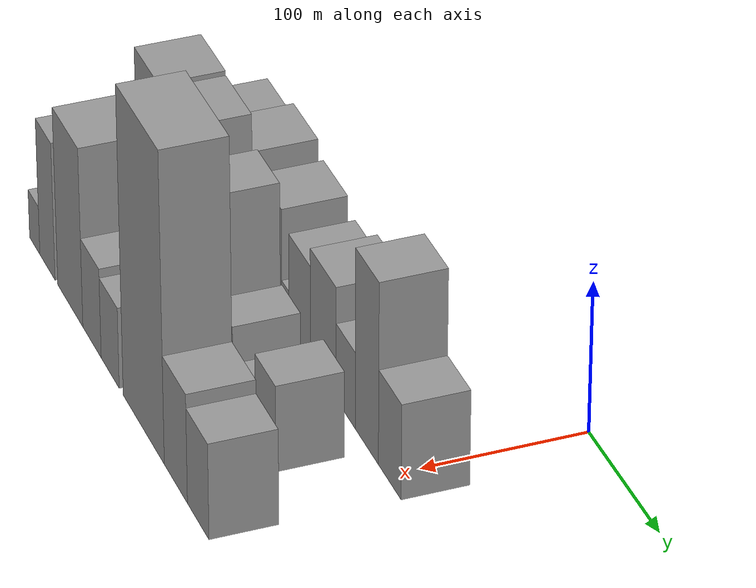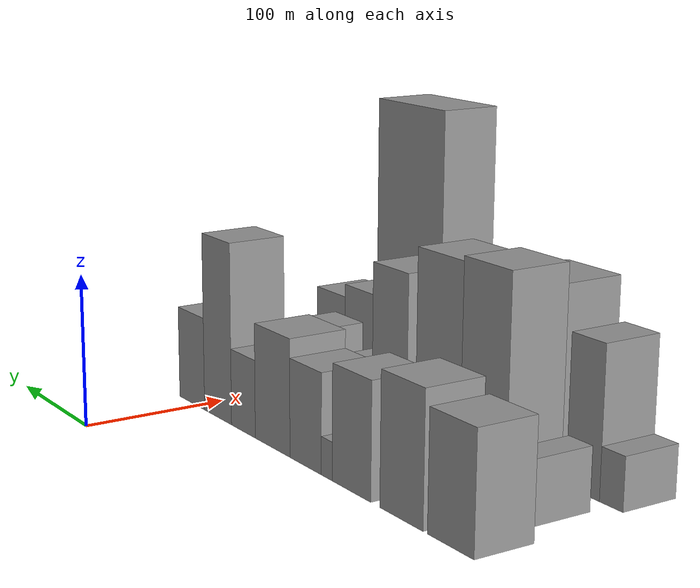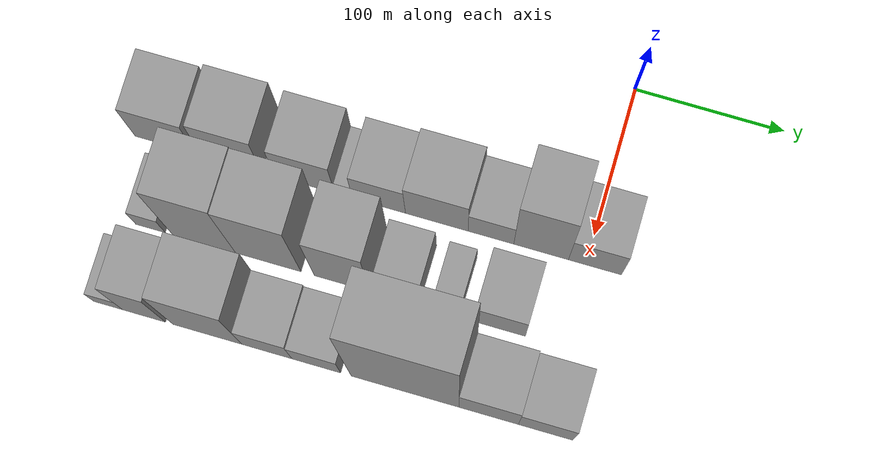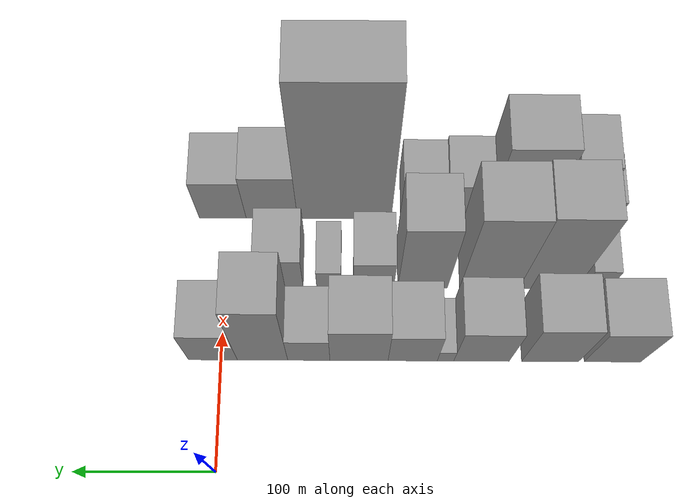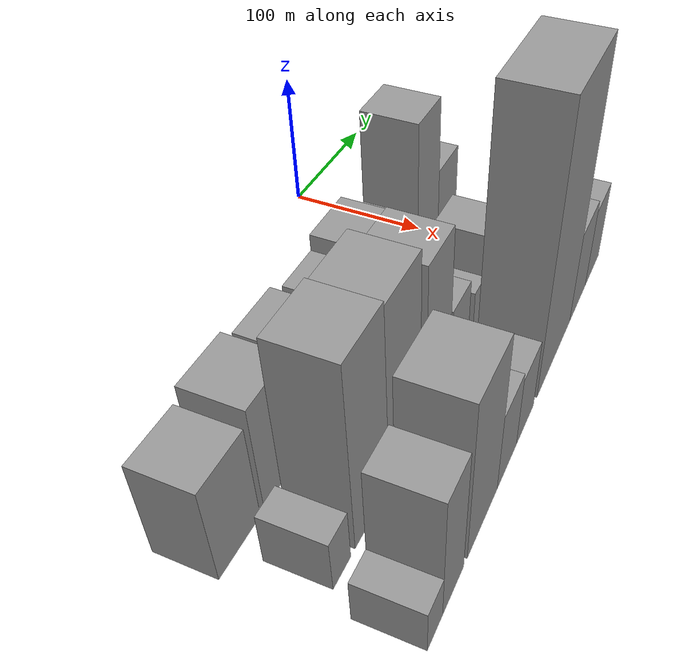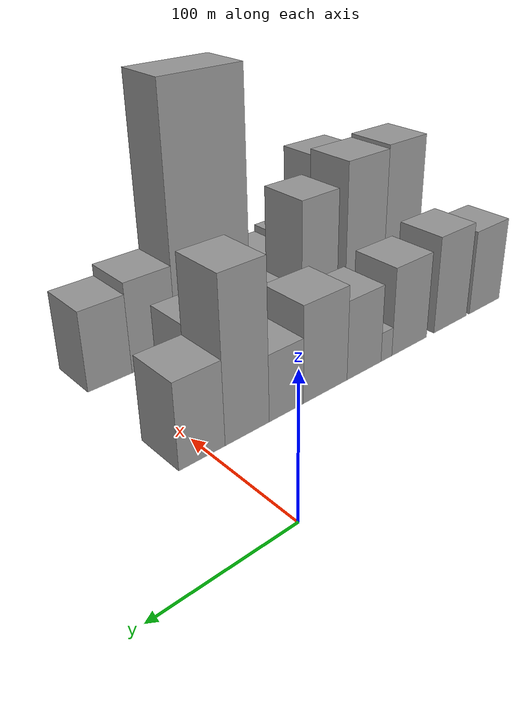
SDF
<sdf version="1.6">
 <world name="default">
  <model name="building_9">
   <static>1</static>
   <pose>100.0000 -281.9549 0 0.000000 0.000000 0.000000</pose>
   <link name="link">
    <pose>0 0 36.00 0 0 0</pose>
    <collision name="collision"><geometry><box><size>40.0000 40.7148 72.0000</size></box></geometry></collision>
    <visual name="visual">
     <cast_shadows>0</cast_shadows>
     <geometry><box><size>40.0000 40.7148 72.0000</size></box></geometry>
     <material>
      <script>
       <uri>model://grey_wall/materials/scripts</uri>
       <uri>model://grey_wall/materials/textures</uri>
       <name>vrc/grey_wall</name>
      </script>
     </material>
    </visual>
   </link>
  </model>
  <model name="building_10">
   <static>1</static>
   <pose>100.0000 -237.0497 0 0.000000 0.000000 0.000000</pose>
   <link name="link">
    <pose>0 0 40.50 0 0 0</pose>
    <collision name="collision"><geometry><box><size>40.0000 41.0955 81.0000</size></box></geometry></collision>
    <visual name="visual">
     <cast_shadows>0</cast_shadows>
     <geometry><box><size>40.0000 41.0955 81.0000</size></box></geometry>
     <material>
      <script>
       <uri>model://grey_wall/materials/scripts</uri>
       <uri>model://grey_wall/materials/textures</uri>
       <name>vrc/grey_wall</name>
      </script>
     </material>
    </visual>
   </link>
  </model>
  <model name="building_11">
   <static>1</static>
   <pose>100.0000 -187.5031 0 0.000000 0.000000 0.000000</pose>
   <link name="link">
    <pose>0 0 36.00 0 0 0</pose>
    <collision name="collision"><geometry><box><size>40.0000 39.9978 72.0000</size></box></geometry></collision>
    <visual name="visual">
     <cast_shadows>0</cast_shadows>
     <geometry><box><size>40.0000 39.9978 72.0000</size></box></geometry>
     <material>
      <script>
       <uri>model://grey_wall/materials/scripts</uri>
       <uri>model://grey_wall/materials/textures</uri>
       <name>vrc/grey_wall</name>
      </script>
     </material>
    </visual>
   </link>
  </model>
  <model name="building_12">
   <static>1</static>
   <pose>100.0000 -161.5487 0 0.000000 0.000000 0.000000</pose>
   <link name="link">
    <pose>0 0 12.00 0 0 0</pose>
    <collision name="collision"><geometry><box><size>40.0000 11.9110 24.0000</size></box></geometry></collision>
    <visual name="visual">
     <cast_shadows>0</cast_shadows>
     <geometry><box><size>40.0000 11.9110 24.0000</size></box></geometry>
     <material>
      <script>
       <uri>model://grey_wall/materials/scripts</uri>
       <uri>model://grey_wall/materials/textures</uri>
       <name>vrc/grey_wall</name>
      </script>
     </material>
    </visual>
   </link>
  </model>
  <model name="building_13">
   <static>1</static>
   <pose>100.0000 -137.8697 0 0.000000 0.000000 0.000000</pose>
   <link name="link">
    <pose>0 0 31.50 0 0 0</pose>
    <collision name="collision"><geometry><box><size>40.0000 35.4469 63.0000</size></box></geometry></collision>
    <visual name="visual">
     <cast_shadows>0</cast_shadows>
     <geometry><box><size>40.0000 35.4469 63.0000</size></box></geometry>
     <material>
      <script>
       <uri>model://grey_wall/materials/scripts</uri>
       <uri>model://grey_wall/materials/textures</uri>
       <name>vrc/grey_wall</name>
      </script>
     </material>
    </visual>
   </link>
  </model>
  <model name="building_14">
   <static>1</static>
   <pose>100.0000 -99.2202 0 0.000000 0.000000 0.000000</pose>
   <link name="link">
    <pose>0 0 37.50 0 0 0</pose>
    <collision name="collision"><geometry><box><size>40.0000 41.8522 75.0000</size></box></geometry></collision>
    <visual name="visual">
     <cast_shadows>0</cast_shadows>
     <geometry><box><size>40.0000 41.8522 75.0000</size></box></geometry>
     <material>
      <script>
       <uri>model://grey_wall/materials/scripts</uri>
       <uri>model://grey_wall/materials/textures</uri>
       <name>vrc/grey_wall</name>
      </script>
     </material>
    </visual>
   </link>
  </model>
  <model name="building_15">
   <static>1</static>
   <pose>100.0000 -63.1004 0 0.000000 0.000000 0.000000</pose>
   <link name="link">
    <pose>0 0 25.50 0 0 0</pose>
    <collision name="collision"><geometry><box><size>40.0000 30.3875 51.0000</size></box></geometry></collision>
    <visual name="visual">
     <cast_shadows>0</cast_shadows>
     <geometry><box><size>40.0000 30.3875 51.0000</size></box></geometry>
     <material>
      <script>
       <uri>model://grey_wall/materials/scripts</uri>
       <uri>model://grey_wall/materials/textures</uri>
       <name>vrc/grey_wall</name>
      </script>
     </material>
    </visual>
   </link>
  </model>
  <model name="building_16">
   <static>1</static>
   <pose>100.0000 -29.7514 0 0.000000 0.000000 0.000000</pose>
   <link name="link">
    <pose>0 0 60.00 0 0 0</pose>
    <collision name="collision"><geometry><box><size>40.0000 36.3105 120.0000</size></box></geometry></collision>
    <visual name="visual">
     <cast_shadows>0</cast_shadows>
     <geometry><box><size>40.0000 36.3105 120.0000</size></box></geometry>
     <material>
      <script>
       <uri>model://grey_wall/materials/scripts</uri>
       <uri>model://grey_wall/materials/textures</uri>
       <name>vrc/grey_wall</name>
      </script>
     </material>
    </visual>
   </link>
  </model>
  <model name="building_17">
   <static>1</static>
   <pose>100.0000 5.9926 0 0.000000 0.000000 0.000000</pose>
   <link name="link">
    <pose>0 0 31.50 0 0 0</pose>
    <collision name="collision"><geometry><box><size>40.0000 35.1775 63.0000</size></box></geometry></collision>
    <visual name="visual">
     <cast_shadows>0</cast_shadows>
     <geometry><box><size>40.0000 35.1775 63.0000</size></box></geometry>
     <material>
      <script>
       <uri>model://grey_wall/materials/scripts</uri>
       <uri>model://grey_wall/materials/textures</uri>
       <name>vrc/grey_wall</name>
      </script>
     </material>
    </visual>
   </link>
  </model>
  <model name="building_42">
   <static>1</static>
   <pose>155.0000 -274.3556 0 0.000000 0.000000 0.000000</pose>
   <link name="link">
    <pose>0 0 19.50 0 0 0</pose>
    <collision name="collision"><geometry><box><size>40.0000 19.8689 39.0000</size></box></geometry></collision>
    <visual name="visual">
     <cast_shadows>0</cast_shadows>
     <geometry><box><size>40.0000 19.8689 39.0000</size></box></geometry>
     <material>
      <script>
       <uri>model://grey_wall/materials/scripts</uri>
       <uri>model://grey_wall/materials/textures</uri>
       <name>vrc/grey_wall</name>
      </script>
     </material>
    </visual>
   </link>
  </model>
  <model name="building_43">
   <static>1</static>
   <pose>155.0000 -238.2974 0 0.000000 0.000000 0.000000</pose>
   <link name="link">
    <pose>0 0 69.00 0 0 0</pose>
    <collision name="collision"><geometry><box><size>40.0000 42.2475 138.0000</size></box></geometry></collision>
    <visual name="visual">
     <cast_shadows>0</cast_shadows>
     <geometry><box><size>40.0000 42.2475 138.0000</size></box></geometry>
     <material>
      <script>
       <uri>model://grey_wall/materials/scripts</uri>
       <uri>model://grey_wall/materials/textures</uri>
       <name>vrc/grey_wall</name>
      </script>
     </material>
    </visual>
   </link>
  </model>
  <model name="building_44">
   <static>1</static>
   <pose>155.0000 -195.3362 0 0.000000 0.000000 0.000000</pose>
   <link name="link">
    <pose>0 0 67.50 0 0 0</pose>
    <collision name="collision"><geometry><box><size>40.0000 43.6750 135.0000</size></box></geometry></collision>
    <visual name="visual">
     <cast_shadows>0</cast_shadows>
     <geometry><box><size>40.0000 43.6750 135.0000</size></box></geometry>
     <material>
      <script>
       <uri>model://grey_wall/materials/scripts</uri>
       <uri>model://grey_wall/materials/textures</uri>
       <name>vrc/grey_wall</name>
      </script>
     </material>
    </visual>
   </link>
  </model>
  <model name="building_45">
   <static>1</static>
   <pose>155.0000 -146.1272 0 0.000000 0.000000 0.000000</pose>
   <link name="link">
    <pose>0 0 58.50 0 0 0</pose>
    <collision name="collision"><geometry><box><size>40.0000 36.7431 117.0000</size></box></geometry></collision>
    <visual name="visual">
     <cast_shadows>0</cast_shadows>
     <geometry><box><size>40.0000 36.7431 117.0000</size></box></geometry>
     <material>
      <script>
       <uri>model://grey_wall/materials/scripts</uri>
       <uri>model://grey_wall/materials/textures</uri>
       <name>vrc/grey_wall</name>
      </script>
     </material>
    </visual>
   </link>
  </model>
  <model name="building_46">
   <static>1</static>
   <pose>155.0000 -109.8792 0 0.000000 0.000000 0.000000</pose>
   <link name="link">
    <pose>0 0 25.50 0 0 0</pose>
    <collision name="collision"><geometry><box><size>40.0000 29.7531 51.0000</size></box></geometry></collision>
    <visual name="visual">
     <cast_shadows>0</cast_shadows>
     <geometry><box><size>40.0000 29.7531 51.0000</size></box></geometry>
     <material>
      <script>
       <uri>model://grey_wall/materials/scripts</uri>
       <uri>model://grey_wall/materials/textures</uri>
       <name>vrc/grey_wall</name>
      </script>
     </material>
    </visual>
   </link>
  </model>
  <model name="building_47">
   <static>1</static>
   <pose>155.0000 -76.9913 0 0.000000 0.000000 0.000000</pose>
   <link name="link">
    <pose>0 0 16.50 0 0 0</pose>
    <collision name="collision"><geometry><box><size>40.0000 18.0227 33.0000</size></box></geometry></collision>
    <visual name="visual">
     <cast_shadows>0</cast_shadows>
     <geometry><box><size>40.0000 18.0227 33.0000</size></box></geometry>
     <material>
      <script>
       <uri>model://grey_wall/materials/scripts</uri>
       <uri>model://grey_wall/materials/textures</uri>
       <name>vrc/grey_wall</name>
      </script>
     </material>
    </visual>
   </link>
  </model>
  <model name="building_48">
   <static>1</static>
   <pose>155.0000 -41.2828 0 0.000000 0.000000 0.000000</pose>
   <link name="link">
    <pose>0 0 28.50 0 0 0</pose>
    <collision name="collision"><geometry><box><size>40.0000 33.3941 57.0000</size></box></geometry></collision>
    <visual name="visual">
     <cast_shadows>0</cast_shadows>
     <geometry><box><size>40.0000 33.3941 57.0000</size></box></geometry>
     <material>
      <script>
       <uri>model://grey_wall/materials/scripts</uri>
       <uri>model://grey_wall/materials/textures</uri>
       <name>vrc/grey_wall</name>
      </script>
     </material>
    </visual>
   </link>
  </model>
  <model name="building_74">
   <static>1</static>
   <pose>210.0000 -285.0549 0 0.000000 0.000000 0.000000</pose>
   <link name="link">
    <pose>0 0 16.50 0 0 0</pose>
    <collision name="collision"><geometry><box><size>40.0000 19.3388 33.0000</size></box></geometry></collision>
    <visual name="visual">
     <cast_shadows>0</cast_shadows>
     <geometry><box><size>40.0000 19.3388 33.0000</size></box></geometry>
     <material>
      <script>
       <uri>model://grey_wall/materials/scripts</uri>
       <uri>model://grey_wall/materials/textures</uri>
       <name>vrc/grey_wall</name>
      </script>
     </material>
    </visual>
   </link>
  </model>
  <model name="building_75">
   <static>1</static>
   <pose>210.0000 -261.0944 0 0.000000 0.000000 0.000000</pose>
   <link name="link">
    <pose>0 0 46.50 0 0 0</pose>
    <collision name="collision"><geometry><box><size>40.0000 28.5822 93.0000</size></box></geometry></collision>
    <visual name="visual">
     <cast_shadows>0</cast_shadows>
     <geometry><box><size>40.0000 28.5822 93.0000</size></box></geometry>
     <material>
      <script>
       <uri>model://grey_wall/materials/scripts</uri>
       <uri>model://grey_wall/materials/textures</uri>
       <name>vrc/grey_wall</name>
      </script>
     </material>
    </visual>
   </link>
  </model>
  <model name="building_76">
   <static>1</static>
   <pose>210.0000 -218.7060 0 0.000000 0.000000 0.000000</pose>
   <link name="link">
    <pose>0 0 60.00 0 0 0</pose>
    <collision name="collision"><geometry><box><size>40.0000 46.1944 120.0000</size></box></geometry></collision>
    <visual name="visual">
     <cast_shadows>0</cast_shadows>
     <geometry><box><size>40.0000 46.1944 120.0000</size></box></geometry>
     <material>
      <script>
       <uri>model://grey_wall/materials/scripts</uri>
       <uri>model://grey_wall/materials/textures</uri>
       <name>vrc/grey_wall</name>
      </script>
     </material>
    </visual>
   </link>
  </model>
  <model name="building_77">
   <static>1</static>
   <pose>210.0000 -179.0960 0 0.000000 0.000000 0.000000</pose>
   <link name="link">
    <pose>0 0 30.00 0 0 0</pose>
    <collision name="collision"><geometry><box><size>40.0000 33.0256 60.0000</size></box></geometry></collision>
    <visual name="visual">
     <cast_shadows>0</cast_shadows>
     <geometry><box><size>40.0000 33.0256 60.0000</size></box></geometry>
     <material>
      <script>
       <uri>model://grey_wall/materials/scripts</uri>
       <uri>model://grey_wall/materials/textures</uri>
       <name>vrc/grey_wall</name>
      </script>
     </material>
    </visual>
   </link>
  </model>
  <model name="building_78">
   <static>1</static>
   <pose>210.0000 -146.5357 0 0.000000 0.000000 0.000000</pose>
   <link name="link">
    <pose>0 0 27.00 0 0 0</pose>
    <collision name="collision"><geometry><box><size>40.0000 32.0950 54.0000</size></box></geometry></collision>
    <visual name="visual">
     <cast_shadows>0</cast_shadows>
     <geometry><box><size>40.0000 32.0950 54.0000</size></box></geometry>
     <material>
      <script>
       <uri>model://grey_wall/materials/scripts</uri>
       <uri>model://grey_wall/materials/textures</uri>
       <name>vrc/grey_wall</name>
      </script>
     </material>
    </visual>
   </link>
  </model>
  <model name="building_79">
   <static>1</static>
   <pose>210.0000 -87.9999 0 0.000000 0.000000 0.000000</pose>
   <link name="link">
    <pose>0 0 102.00 0 0 0</pose>
    <collision name="collision"><geometry><box><size>40.0000 70.9766 204.0000</size></box></geometry></collision>
    <visual name="visual">
     <cast_shadows>0</cast_shadows>
     <geometry><box><size>40.0000 70.9766 204.0000</size></box></geometry>
     <material>
      <script>
       <uri>model://grey_wall/materials/scripts</uri>
       <uri>model://grey_wall/materials/textures</uri>
       <name>vrc/grey_wall</name>
      </script>
     </material>
    </visual>
   </link>
  </model>
  <model name="building_80">
   <static>1</static>
   <pose>210.0000 -33.0815 0 0.000000 0.000000 0.000000</pose>
   <link name="link">
    <pose>0 0 36.00 0 0 0</pose>
    <collision name="collision"><geometry><box><size>40.0000 38.8601 72.0000</size></box></geometry></collision>
    <visual name="visual">
     <cast_shadows>0</cast_shadows>
     <geometry><box><size>40.0000 38.8601 72.0000</size></box></geometry>
     <material>
      <script>
       <uri>model://grey_wall/materials/scripts</uri>
       <uri>model://grey_wall/materials/textures</uri>
       <name>vrc/grey_wall</name>
      </script>
     </material>
    </visual>
   </link>
  </model>
  <model name="building_81">
   <static>1</static>
   <pose>210.0000 4.1134 0 0.000000 0.000000 0.000000</pose>
   <link name="link">
    <pose>0 0 31.50 0 0 0</pose>
    <collision name="collision"><geometry><box><size>40.0000 35.5298 63.0000</size></box></geometry></collision>
    <visual name="visual">
     <cast_shadows>0</cast_shadows>
     <geometry><box><size>40.0000 35.5298 63.0000</size></box></geometry>
     <material>
      <script>
       <uri>model://grey_wall/materials/scripts</uri>
       <uri>model://grey_wall/materials/textures</uri>
       <name>vrc/grey_wall</name>
      </script>
     </material>
    </visual>
   </link>
  </model>
 </world>
</sdf>
